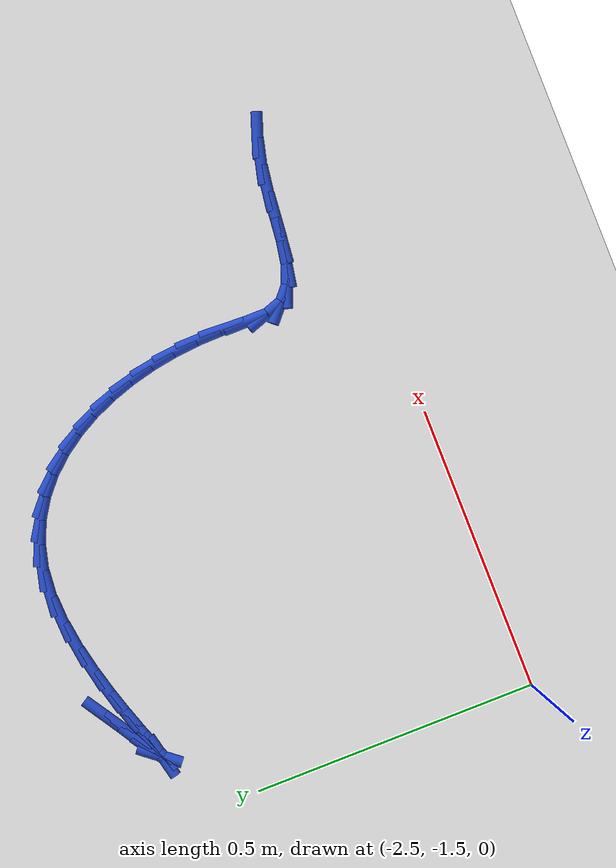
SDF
<sdf version="1.6">
 <world name="default">
  <model name="ground_plane">
   <static>1</static>
   <link name="link">
    <collision name="collision">
     <geometry><plane><normal>0 0 1</normal><size>100 100</size></plane></geometry>
     <surface><friction><ode><mu>100</mu><mu2>50</mu2></ode></friction></surface>
    </collision>
    <visual name="visual">
     <cast_shadows>0</cast_shadows>
     <geometry><plane><normal>0 0 1</normal><size>100 100</size></plane></geometry>
     <material>
      <script><uri>file://media/materials/scripts/gazebo.material</uri><name>Gazebo/WhiteGlow</name></script>
     </material>
    </visual>
   </link>
  </model>
  <model name="line">
   <link name="link_131">
    <pose>-2.2809347434472547 -0.8040526336117726 0.01 0 1.57 0.5700044183175814</pose>
    <collision name="collision">
     <geometry><cylinder><radius>0.01</radius><length>0.08</length></cylinder></geometry>
    </collision>
    <visual name="visual">
     <material>
      <script><name>Gazebo/Blue</name><uri>file://media/materials/scripts/gazebo.material</uri></script>
     </material>
     <geometry><cylinder><radius>0.01</radius><length>0.08</length></cylinder></geometry>
    </visual>
   </link>
   <link name="link_132">
    <pose>-2.3156998063044494 -0.8263361623115961 0.01 0 1.57 0.5602468389517496</pose>
    <collision name="collision">
     <geometry><cylinder><radius>0.01</radius><length>0.08</length></cylinder></geometry>
    </collision>
    <visual name="visual">
     <material>
      <script><name>Gazebo/Blue</name><uri>file://media/materials/scripts/gazebo.material</uri></script>
     </material>
     <geometry><cylinder><radius>0.01</radius><length>0.08</length></cylinder></geometry>
    </visual>
   </link>
   <link name="link_133">
    <pose>-2.3449058120771 -0.8446568984674535 0.01 0 1.57 0.5623313609568126</pose>
    <collision name="collision">
     <geometry><cylinder><radius>0.01</radius><length>0.08</length></cylinder></geometry>
    </collision>
    <visual name="visual">
     <material>
      <script><name>Gazebo/Blue</name><uri>file://media/materials/scripts/gazebo.material</uri></script>
     </material>
     <geometry><cylinder><radius>0.01</radius><length>0.08</length></cylinder></geometry>
    </visual>
   </link>
   <link name="link_134">
    <pose>-2.366943564401174 -0.8585451348063241 0.01 0 1.57 0.5955775280262811</pose>
    <collision name="collision">
     <geometry><cylinder><radius>0.01</radius><length>0.08</length></cylinder></geometry>
    </collision>
    <visual name="visual">
     <material>
      <script><name>Gazebo/Blue</name><uri>file://media/materials/scripts/gazebo.material</uri></script>
     </material>
     <geometry><cylinder><radius>0.01</radius><length>0.08</length></cylinder></geometry>
    </visual>
   </link>
   <link name="link_135">
    <pose>-2.380203866912641 -0.8675311640551882 0.01 0 1.57 0.899037864258101</pose>
    <collision name="collision">
     <geometry><cylinder><radius>0.01</radius><length>0.08</length></cylinder></geometry>
    </collision>
    <visual name="visual">
     <material>
      <script><name>Gazebo/Blue</name><uri>file://media/materials/scripts/gazebo.material</uri></script>
     </material>
     <geometry><cylinder><radius>0.01</radius><length>0.08</length></cylinder></geometry>
    </visual>
   </link>
   <link name="link_136">
    <pose>-2.3830775232474712 -0.8711452789410252 0.01 0 1.57 0.230229087973959</pose>
    <collision name="collision">
     <geometry><cylinder><radius>0.01</radius><length>0.08</length></cylinder></geometry>
    </collision>
    <visual name="visual">
     <material>
      <script><name>Gazebo/Blue</name><uri>file://media/materials/scripts/gazebo.material</uri></script>
     </material>
     <geometry><cylinder><radius>0.01</radius><length>0.08</length></cylinder></geometry>
    </visual>
   </link>
   <link name="link_137">
    <pose>-2.374236552973823 -0.8690730879235568 0.01 0 1.57 0.3360895198768585</pose>
    <collision name="collision">
     <geometry><cylinder><radius>0.01</radius><length>0.08</length></cylinder></geometry>
    </collision>
    <visual name="visual">
     <material>
      <script><name>Gazebo/Blue</name><uri>file://media/materials/scripts/gazebo.material</uri></script>
     </material>
     <geometry><cylinder><radius>0.01</radius><length>0.08</length></cylinder></geometry>
    </visual>
   </link>
   <link name="link_138">
    <pose>-2.3544618456471618 -0.8621649296567914 0.01 0 1.57 0.3435918599354317</pose>
    <collision name="collision">
     <geometry><cylinder><radius>0.01</radius><length>0.08</length></cylinder></geometry>
    </collision>
    <visual name="visual">
     <material>
      <script><name>Gazebo/Blue</name><uri>file://media/materials/scripts/gazebo.material</uri></script>
     </material>
     <geometry><cylinder><radius>0.01</radius><length>0.08</length></cylinder></geometry>
    </visual>
   </link>
   <link name="link_139">
    <pose>-2.32549156406529 -0.8517998453967194 0.01 0 1.57 0.3291292774249122</pose>
    <collision name="collision">
     <geometry><cylinder><radius>0.01</radius><length>0.08</length></cylinder></geometry>
    </collision>
    <visual name="visual">
     <material>
      <script><name>Gazebo/Blue</name><uri>file://media/materials/scripts/gazebo.material</uri></script>
     </material>
     <geometry><cylinder><radius>0.01</radius><length>0.08</length></cylinder></geometry>
    </visual>
   </link>
   <link name="link_140">
    <pose>-2.2890686512790683 -0.8393595165360428 0.01 0 1.57 0.30218097840843494</pose>
    <collision name="collision">
     <geometry><cylinder><radius>0.01</radius><length>0.08</length></cylinder></geometry>
    </collision>
    <visual name="visual">
     <material>
      <script><name>Gazebo/Blue</name><uri>file://media/materials/scripts/gazebo.material</uri></script>
     </material>
     <geometry><cylinder><radius>0.01</radius><length>0.08</length></cylinder></geometry>
    </visual>
   </link>
   <link name="link_141">
    <pose>-2.246936050339358 -0.8262256244674641 0.01 0 1.57 0.26369061420523626</pose>
    <collision name="collision">
     <geometry><cylinder><radius>0.01</radius><length>0.08</length></cylinder></geometry>
    </collision>
    <visual name="visual">
     <material>
      <script><name>Gazebo/Blue</name><uri>file://media/materials/scripts/gazebo.material</uri></script>
     </material>
     <geometry><cylinder><radius>0.01</radius><length>0.08</length></cylinder></geometry>
    </visual>
   </link>
   <link name="link_142">
    <pose>-2.2008367042970187 -0.8137798505836852 0.01 0 1.57 0.21150906862683963</pose>
    <collision name="collision">
     <geometry><cylinder><radius>0.01</radius><length>0.08</length></cylinder></geometry>
    </collision>
    <visual name="visual">
     <material>
      <script><name>Gazebo/Blue</name><uri>file://media/materials/scripts/gazebo.material</uri></script>
     </material>
     <geometry><cylinder><radius>0.01</radius><length>0.08</length></cylinder></geometry>
    </visual>
   </link>
   <link name="link_143">
    <pose>-2.152513556202911 -0.8034038762774077 0.01 0 1.57 0.14094295557872008</pose>
    <collision name="collision">
     <geometry><cylinder><radius>0.01</radius><length>0.08</length></cylinder></geometry>
    </collision>
    <visual name="visual">
     <material>
      <script><name>Gazebo/Blue</name><uri>file://media/materials/scripts/gazebo.material</uri></script>
     </material>
     <geometry><cylinder><radius>0.01</radius><length>0.08</length></cylinder></geometry>
    </visual>
   </link>
   <link name="link_144">
    <pose>-2.103709549107895 -0.7964793829413342 0.01 0 1.57 0.04396085518658434</pose>
    <collision name="collision">
     <geometry><cylinder><radius>0.01</radius><length>0.08</length></cylinder></geometry>
    </collision>
    <visual name="visual">
     <material>
      <script><name>Gazebo/Blue</name><uri>file://media/materials/scripts/gazebo.material</uri></script>
     </material>
     <geometry><cylinder><radius>0.01</radius><length>0.08</length></cylinder></geometry>
    </visual>
   </link>
   <link name="link_145">
    <pose>-2.056167626062833 -0.7943880519681666 0.01 0 1.57 -0.09038919953741986</pose>
    <collision name="collision">
     <geometry><cylinder><radius>0.01</radius><length>0.08</length></cylinder></geometry>
    </collision>
    <visual name="visual">
     <material>
      <script><name>Gazebo/Blue</name><uri>file://media/materials/scripts/gazebo.material</uri></script>
     </material>
     <geometry><cylinder><radius>0.01</radius><length>0.08</length></cylinder></geometry>
    </visual>
   </link>
   <link name="link_146">
    <pose>-2.0115568257144667 -0.7984314041802734 0.01 0 1.57 -0.24854037006025767</pose>
    <collision name="collision">
     <geometry><cylinder><radius>0.01</radius><length>0.08</length></cylinder></geometry>
    </collision>
    <visual name="visual">
     <material>
      <script><name>Gazebo/Blue</name><uri>file://media/materials/scripts/gazebo.material</uri></script>
     </material>
     <geometry><cylinder><radius>0.01</radius><length>0.08</length></cylinder></geometry>
    </visual>
   </link>
   <link name="link_147">
    <pose>-1.9705559680731286 -0.808836917633593 0.01 0 1.57 -0.4092030279625494</pose>
    <collision name="collision">
     <geometry><cylinder><radius>0.01</radius><length>0.08</length></cylinder></geometry>
    </collision>
    <visual name="visual">
     <material>
      <script><name>Gazebo/Blue</name><uri>file://media/materials/scripts/gazebo.material</uri></script>
     </material>
     <geometry><cylinder><radius>0.01</radius><length>0.08</length></cylinder></geometry>
    </visual>
   </link>
   <link name="link_148">
    <pose>-1.9331367146965865 -0.82506504945276 0.01 0 1.57 -0.565338102589786</pose>
    <collision name="collision">
     <geometry><cylinder><radius>0.01</radius><length>0.08</length></cylinder></geometry>
    </collision>
    <visual name="visual">
     <material>
      <script><name>Gazebo/Blue</name><uri>file://media/materials/scripts/gazebo.material</uri></script>
     </material>
     <geometry><cylinder><radius>0.01</radius><length>0.08</length></cylinder></geometry>
    </visual>
   </link>
   <link name="link_149">
    <pose>-1.8992554539944992 -0.8465596907095713 0.01 0 1.57 -0.7116376147314935</pose>
    <collision name="collision">
     <geometry><cylinder><radius>0.01</radius><length>0.08</length></cylinder></geometry>
    </collision>
    <visual name="visual">
     <material>
      <script><name>Gazebo/Blue</name><uri>file://media/materials/scripts/gazebo.material</uri></script>
     </material>
     <geometry><cylinder><radius>0.01</radius><length>0.08</length></cylinder></geometry>
    </visual>
   </link>
   <link name="link_150">
    <pose>-1.8688685743765245 -0.8727647324758261 0.01 0 1.57 -0.8450740894121942</pose>
    <collision name="collision">
     <geometry><cylinder><radius>0.01</radius><length>0.08</length></cylinder></geometry>
    </collision>
    <visual name="visual">
     <material>
      <script><name>Gazebo/Blue</name><uri>file://media/materials/scripts/gazebo.material</uri></script>
     </material>
     <geometry><cylinder><radius>0.01</radius><length>0.08</length></cylinder></geometry>
    </visual>
   </link>
   <link name="link_151">
    <pose>-1.8419324642523192 -0.9031240658233227 0.01 0 1.57 -0.9648555646399263</pose>
    <collision name="collision">
     <geometry><cylinder><radius>0.01</radius><length>0.08</length></cylinder></geometry>
    </collision>
    <visual name="visual">
     <material>
      <script><name>Gazebo/Blue</name><uri>file://media/materials/scripts/gazebo.material</uri></script>
     </material>
     <geometry><cylinder><radius>0.01</radius><length>0.08</length></cylinder></geometry>
    </visual>
   </link>
   <link name="link_152">
    <pose>-1.8184035120315407 -0.937081581823859 0.01 0 1.57 -1.0717868729826632</pose>
    <collision name="collision">
     <geometry><cylinder><radius>0.01</radius><length>0.08</length></cylinder></geometry>
    </collision>
    <visual name="visual">
     <material>
      <script><name>Gazebo/Blue</name><uri>file://media/materials/scripts/gazebo.material</uri></script>
     </material>
     <geometry><cylinder><radius>0.01</radius><length>0.08</length></cylinder></geometry>
    </visual>
   </link>
   <link name="link_153">
    <pose>-1.798238106123847 -0.9740811715492347 0.01 0 1.57 -1.1675512418377443</pose>
    <collision name="collision">
     <geometry><cylinder><radius>0.01</radius><length>0.08</length></cylinder></geometry>
    </collision>
    <visual name="visual">
     <material>
      <script><name>Gazebo/Blue</name><uri>file://media/materials/scripts/gazebo.material</uri></script>
     </material>
     <geometry><cylinder><radius>0.01</radius><length>0.08</length></cylinder></geometry>
    </visual>
   </link>
   <link name="link_154">
    <pose>-1.7813926349388967 -1.0135667260712466 0.01 0 1.57 -1.25418278982894</pose>
    <collision name="collision">
     <geometry><cylinder><radius>0.01</radius><length>0.08</length></cylinder></geometry>
    </collision>
    <visual name="visual">
     <material>
      <script><name>Gazebo/Blue</name><uri>file://media/materials/scripts/gazebo.material</uri></script>
     </material>
     <geometry><cylinder><radius>0.01</radius><length>0.08</length></cylinder></geometry>
    </visual>
   </link>
   <link name="link_155">
    <pose>-1.7678234868863463 -1.0549821364616931 0.01 0 1.57 -1.3337704791177187</pose>
    <collision name="collision">
     <geometry><cylinder><radius>0.01</radius><length>0.08</length></cylinder></geometry>
    </collision>
    <visual name="visual">
     <material>
      <script><name>Gazebo/Blue</name><uri>file://media/materials/scripts/gazebo.material</uri></script>
     </material>
     <geometry><cylinder><radius>0.01</radius><length>0.08</length></cylinder></geometry>
    </visual>
   </link>
   <link name="link_156">
    <pose>-1.757487050375853 -1.0977712937923731 0.01 0 1.57 -1.4083366606304049</pose>
    <collision name="collision">
     <geometry><cylinder><radius>0.01</radius><length>0.08</length></cylinder></geometry>
    </collision>
    <visual name="visual">
     <material>
      <script><name>Gazebo/Blue</name><uri>file://media/materials/scripts/gazebo.material</uri></script>
     </material>
     <geometry><cylinder><radius>0.01</radius><length>0.08</length></cylinder></geometry>
    </visual>
   </link>
   <link name="link_157">
    <pose>-1.7503397138170755 -1.141378089135086 0.01 0 1.57 -1.4798240263324518</pose>
    <collision name="collision">
     <geometry><cylinder><radius>0.01</radius><length>0.08</length></cylinder></geometry>
    </collision>
    <visual name="visual">
     <material>
      <script><name>Gazebo/Blue</name><uri>file://media/materials/scripts/gazebo.material</uri></script>
     </material>
     <geometry><cylinder><radius>0.01</radius><length>0.08</length></cylinder></geometry>
    </visual>
   </link>
   <link name="link_158">
    <pose>-1.746337865619671 -1.185246413561628 0.01 0 1.57 -1.5501452788830572</pose>
    <collision name="collision">
     <geometry><cylinder><radius>0.01</radius><length>0.08</length></cylinder></geometry>
    </collision>
    <visual name="visual">
     <material>
      <script><name>Gazebo/Blue</name><uri>file://media/materials/scripts/gazebo.material</uri></script>
     </material>
     <geometry><cylinder><radius>0.01</radius><length>0.08</length></cylinder></geometry>
    </visual>
   </link>
   <link name="link_159">
    <pose>-1.7454378941932969 -1.2288201581437983 0.01 0 1.57 1.5260762691779</pose>
    <collision name="collision">
     <geometry><cylinder><radius>0.01</radius><length>0.08</length></cylinder></geometry>
    </collision>
    <visual name="visual">
     <material>
      <script><name>Gazebo/Blue</name><uri>file://media/materials/scripts/gazebo.material</uri></script>
     </material>
     <geometry><cylinder><radius>0.01</radius><length>0.08</length></cylinder></geometry>
    </visual>
   </link>
   <link name="link_160">
    <pose>-1.7473437308941389 -1.2714087894892434 0.01 0 1.57 -1.5697119985042052</pose>
    <collision name="collision">
     <geometry><cylinder><radius>0.01</radius><length>0.08</length></cylinder></geometry>
    </collision>
    <visual name="visual">
     <material>
      <script><name>Gazebo/Blue</name><uri>file://media/materials/scripts/gazebo.material</uri></script>
     </material>
     <geometry><cylinder><radius>0.01</radius><length>0.08</length></cylinder></geometry>
    </visual>
   </link>
   <link name="link_161">
    <pose>-1.747301941304724 -1.3099483843659805 0.01 0 1.57 -1.2391386133553601</pose>
    <collision name="collision">
     <geometry><cylinder><radius>0.01</radius><length>0.08</length></cylinder></geometry>
    </collision>
    <visual name="visual">
     <material>
      <script><name>Gazebo/Blue</name><uri>file://media/materials/scripts/gazebo.material</uri></script>
     </material>
     <geometry><cylinder><radius>0.01</radius><length>0.08</length></cylinder></geometry>
    </visual>
   </link>
   <link name="link_162">
    <pose>-1.7370973521815096 -1.3395803163366855 0.01 0 1.57 -0.7151331597096319</pose>
    <collision name="collision">
     <geometry><cylinder><radius>0.01</radius><length>0.08</length></cylinder></geometry>
    </collision>
    <visual name="visual">
     <material>
      <script><name>Gazebo/Blue</name><uri>file://media/materials/scripts/gazebo.material</uri></script>
     </material>
     <geometry><cylinder><radius>0.01</radius><length>0.08</length></cylinder></geometry>
    </visual>
   </link>
   <link name="link_163">
    <pose>-1.714328416140988 -1.3593549957397209 0.01 0 1.57 -0.35755719704145134</pose>
    <collision name="collision">
     <geometry><cylinder><radius>0.01</radius><length>0.08</length></cylinder></geometry>
    </collision>
    <visual name="visual">
     <material>
      <script><name>Gazebo/Blue</name><uri>file://media/materials/scripts/gazebo.material</uri></script>
     </material>
     <geometry><cylinder><radius>0.01</radius><length>0.08</length></cylinder></geometry>
    </visual>
   </link>
   <link name="link_164">
    <pose>-1.6815120949351499 -1.3716157151718138 0.01 0 1.57 -0.1769769388319226</pose>
    <collision name="collision">
     <geometry><cylinder><radius>0.01</radius><length>0.08</length></cylinder></geometry>
    </collision>
    <visual name="visual">
     <material>
      <script><name>Gazebo/Blue</name><uri>file://media/materials/scripts/gazebo.material</uri></script>
     </material>
     <geometry><cylinder><radius>0.01</radius><length>0.08</length></cylinder></geometry>
    </visual>
   </link>
   <link name="link_165">
    <pose>-1.641313741379891 -1.3788051132486088 0.01 0 1.57 -0.10119411622312907</pose>
    <collision name="collision">
     <geometry><cylinder><radius>0.01</radius><length>0.08</length></cylinder></geometry>
    </collision>
    <visual name="visual">
     <material>
      <script><name>Gazebo/Blue</name><uri>file://media/materials/scripts/gazebo.material</uri></script>
     </material>
     <geometry><cylinder><radius>0.01</radius><length>0.08</length></cylinder></geometry>
    </visual>
   </link>
   <link name="link_166">
    <pose>-1.5963987082911097 -1.3833658285857542 0.01 0 1.57 -0.0928767996454265</pose>
    <collision name="collision">
     <geometry><cylinder><radius>0.01</radius><length>0.08</length></cylinder></geometry>
    </collision>
    <visual name="visual">
     <material>
      <script><name>Gazebo/Blue</name><uri>file://media/materials/scripts/gazebo.material</uri></script>
     </material>
     <geometry><cylinder><radius>0.01</radius><length>0.08</length></cylinder></geometry>
    </visual>
   </link>
   <link name="link_167">
    <pose>-1.5494323484847055 -1.3877404997988956 0.01 0 1.57 -0.14209798092960477</pose>
    <collision name="collision">
     <geometry><cylinder><radius>0.01</radius><length>0.08</length></cylinder></geometry>
    </collision>
    <visual name="visual">
     <material>
      <script><name>Gazebo/Blue</name><uri>file://media/materials/scripts/gazebo.material</uri></script>
     </material>
     <geometry><cylinder><radius>0.01</radius><length>0.08</length></cylinder></geometry>
    </visual>
   </link>
   <link name="link_168">
    <pose>-1.5030800147765753 -1.3943717655036798 0.01 0 1.57 -0.2416325408374151</pose>
    <collision name="collision">
     <geometry><cylinder><radius>0.01</radius><length>0.08</length></cylinder></geometry>
    </collision>
    <visual name="visual">
     <material>
      <script><name>Gazebo/Blue</name><uri>file://media/materials/scripts/gazebo.material</uri></script>
     </material>
     <geometry><cylinder><radius>0.01</radius><length>0.08</length></cylinder></geometry>
    </visual>
   </link>
   <link name="link_169">
    <pose>-1.4595710818793832 -1.4050944420942015 0.01 0 1.57 -0.3292749783668602</pose>
    <collision name="collision">
     <geometry><cylinder><radius>0.01</radius><length>0.08</length></cylinder></geometry>
    </collision>
    <visual name="visual">
     <material>
      <script><name>Gazebo/Blue</name><uri>file://media/materials/scripts/gazebo.material</uri></script>
     </material>
     <geometry><cylinder><radius>0.01</radius><length>0.08</length></cylinder></geometry>
    </visual>
   </link>
  </model>
 </world>
</sdf>
